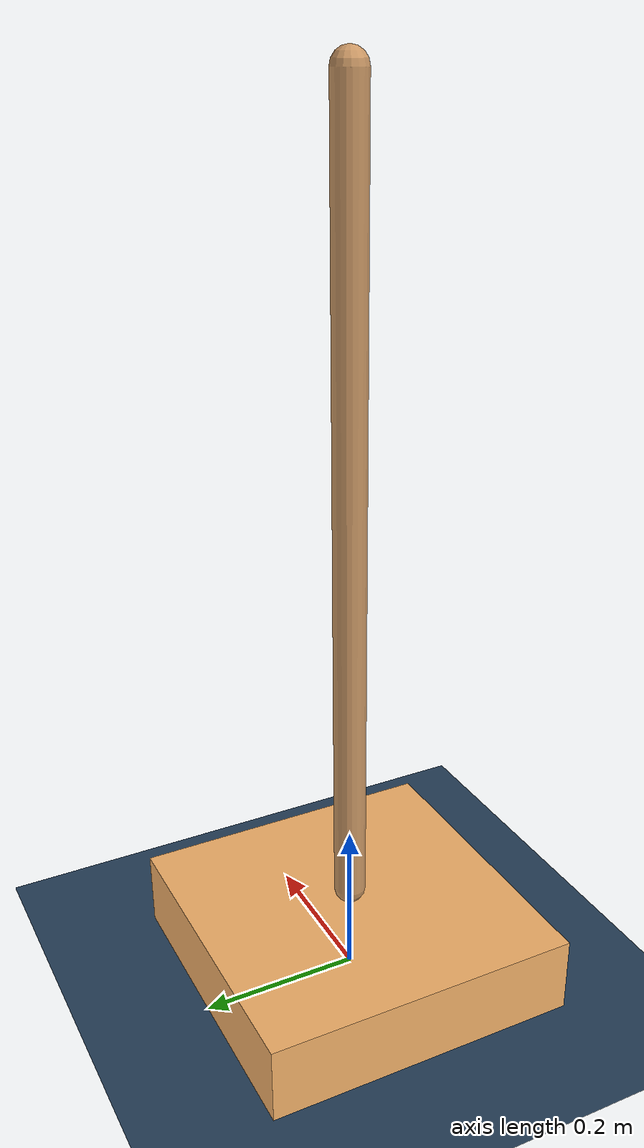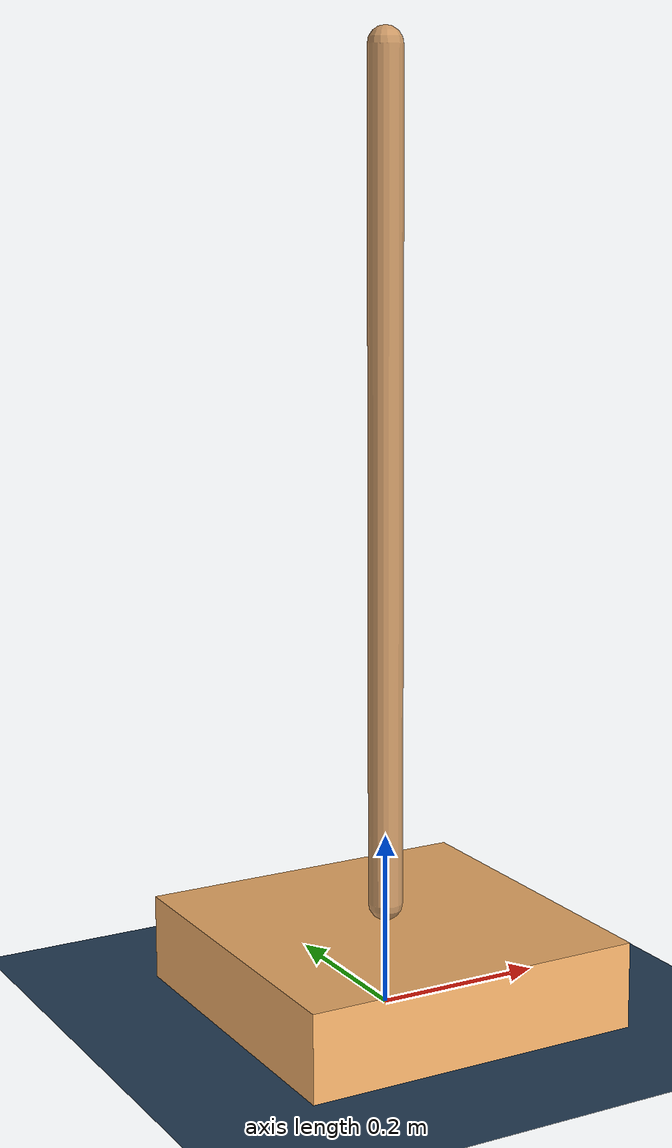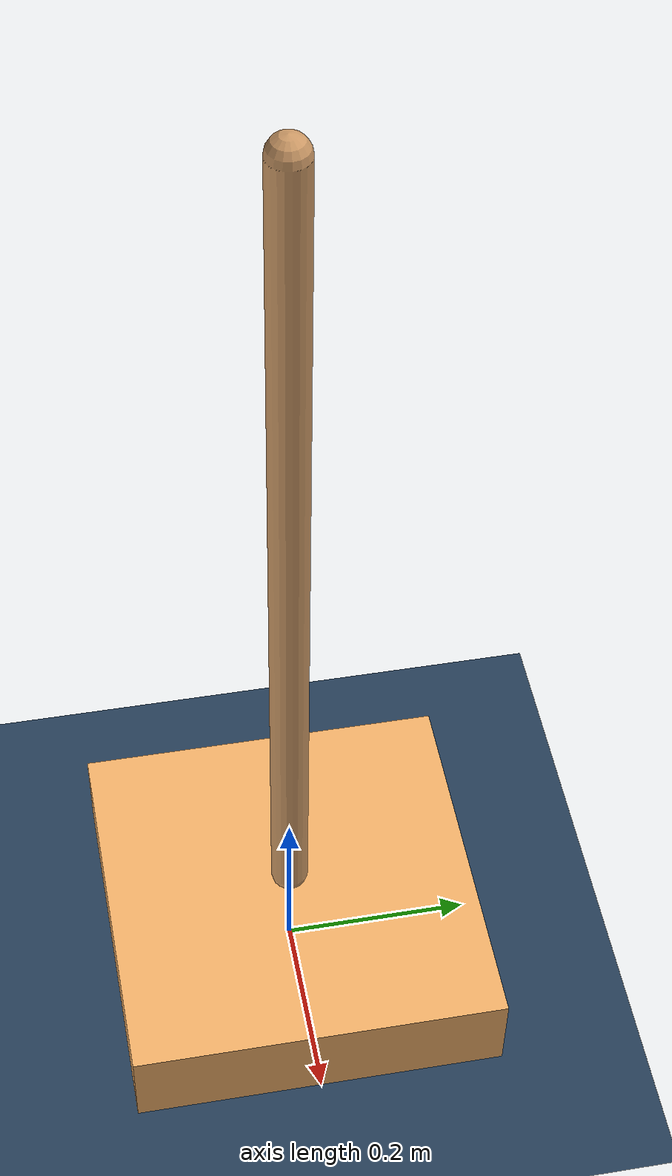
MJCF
<mujoco model="Pendulum">
  <compiler autolimits="true"/>
	<option timestep="0.001" integrator="RK4">
		<flag sensornoise="enable" />
	</option>

  <visual>
    <map force="0.1" zfar="30"/>
    <rgba haze="0.15 0.25 0.35 1"/>
    <global offwidth="2560" offheight="1440" elevation="-20" azimuth="120"/>
  </visual>

  <asset>
    <texture type="skybox" builtin="gradient" rgb1=".3 .5 .7" rgb2="0 0 0" width="32" height="512"/>
    <texture name="body" type="cube" builtin="flat" mark="cross" width="127" height="1278" rgb1="0.8 0.6 0.4" rgb2="0.8 0.6 0.4" markrgb="1 1 1" random="0.01"/>
    <material name="body" texture="body" texuniform="true" rgba="0.8 0.6 .4 1"/>
    <texture name="grid" type="2d" builtin="checker" width="512" height="512" rgb1=".1 .2 .3" rgb2=".2 .3 .4"/>
    <material name="grid" texture="grid" texrepeat="1 1" texuniform="true" reflectance=".2"/>
  </asset>

	<worldbody>
    <light diffuse=".5 .5 .5" pos="0 0 3" dir="0 0 -1"/>
		<geom name="floor" type="plane" size="0 0 0.05" material="grid"/>
		<body pos="0 0 0.05">
      <geom type="box" size="0.2 0.2 0.05" mass="2" rgba="0.965 0.702 0.4196078 1"/>
      <body pos="0 0 0.55" euler="0 0 0">
        <geom type="capsule" size="0.02 0.48" rgba="0.8 0.6 .4 1" mass="1"/>
        <joint name="joint_x" type="hinge" axis = "1 0 0" pos="0 0 -0.5" range="-90 90"/>
        <joint name="joint_y" type="hinge" axis = "0 1 0" pos="0 0 -0.5" range="-90 90"/>
        <site name = "site_imu" pos = "0 0 -0.5"/>
        <site name = "site_forcesensor" pos = "0 0 -0.5"/>
      </body>
		</body>
	</worldbody>
	<actuator>
		<motor name="joint_x" joint="joint_x" gear="1" ctrllimited="true" ctrlrange="-100 100" />
		<motor name="joint_y" joint="joint_y" gear="1" ctrllimited="true" ctrlrange="-100 100" />
	</actuator>
	<sensor>
		<force name = "forcesensor" site = "site_forcesensor" cutoff = "2000.0"/>
		<torque name = "torquesensor" site = "site_forcesensor" cutoff = "2000.0"/>
    <accelerometer name = "imu_acc" site = "site_imu"/>
    <gyro name = "imu_gyro" site = "site_imu"/>
    <framepos name='imu_pos' objtype='site' objname='site_imu'/>
    <framelinvel name='imu_linvel' objtype='site' objname='site_imu'/>
	</sensor>
</mujoco>
